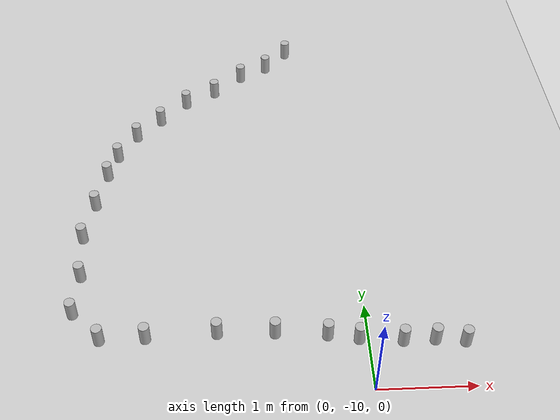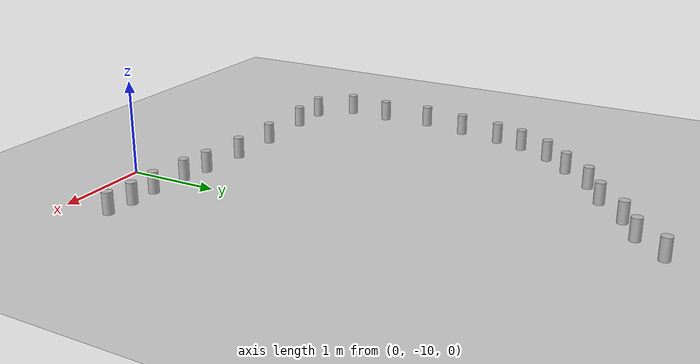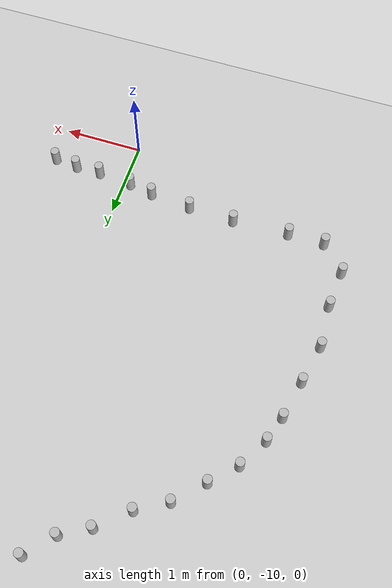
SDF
<sdf version="1.7">
 <world name="default">
  <model name="ground_plane">
   <static>1</static>
   <link name="link">
    <collision name="collision">
     <geometry><plane><normal>0 0 1</normal><size>100 100</size></plane></geometry>
     <surface>
      <contact><collide_bitmask>65535</collide_bitmask></contact>
      <friction><ode><mu>100</mu><mu2>50</mu2></ode></friction>
     </surface>
    </collision>
    <visual name="visual">
     <cast_shadows>0</cast_shadows>
     <geometry><plane><normal>0 0 1</normal><size>100 100</size></plane></geometry>
     <material>
      <script><uri>file://media/materials/scripts/gazebo.material</uri><name>Gazebo/Grey</name></script>
     </material>
    </visual>
   </link>
  </model>
  <model name="beer_clone_31">
   <link name="link">
    <pose>0 0 0.115 0 -0 0</pose>
    <inertial>
     <mass>0.39</mass>
     <inertia><ixx>0.00058</ixx><ixy>0</ixy><ixz>0</ixz><iyy>0.00058</iyy><iyz>0</iyz><izz>0.00019</izz></inertia>
    </inertial>
    <collision name="collision">
     <geometry><cylinder><radius>0.055</radius><length>0.23</length></cylinder></geometry>
    </collision>
    <visual name="visual">
     <geometry><cylinder><radius>0.055</radius><length>0.23</length></cylinder></geometry>
     <material>
      <script>
       <uri>model://beer/materials/scripts</uri>
       <uri>model://beer/materials/textures</uri>
       <name>Beer/Diffuse</name>
      </script>
     </material>
    </visual>
   </link>
   <pose>-0.602273 -4.65243 0 0 -0 0</pose>
  </model>
  <model name="beer_clone_32">
   <link name="link">
    <pose>0 0 0.115 0 -0 0</pose>
    <inertial>
     <mass>0.39</mass>
     <inertia><ixx>0.00058</ixx><ixy>0</ixy><ixz>0</ixz><iyy>0.00058</iyy><iyz>0</iyz><izz>0.00019</izz></inertia>
    </inertial>
    <collision name="collision">
     <geometry><cylinder><radius>0.055</radius><length>0.23</length></cylinder></geometry>
    </collision>
    <visual name="visual">
     <geometry><cylinder><radius>0.055</radius><length>0.23</length></cylinder></geometry>
     <material>
      <script>
       <uri>model://beer/materials/scripts</uri>
       <uri>model://beer/materials/textures</uri>
       <name>Beer/Diffuse</name>
      </script>
     </material>
    </visual>
   </link>
   <pose>-0.881178 -4.96485 0 0 -0 0</pose>
  </model>
  <model name="beer_clone_33">
   <link name="link">
    <pose>0 0 0.115 0 -0 0</pose>
    <inertial>
     <mass>0.39</mass>
     <inertia><ixx>0.00058</ixx><ixy>0</ixy><ixz>0</ixz><iyy>0.00058</iyy><iyz>0</iyz><izz>0.00019</izz></inertia>
    </inertial>
    <collision name="collision">
     <geometry><cylinder><radius>0.055</radius><length>0.23</length></cylinder></geometry>
    </collision>
    <visual name="visual">
     <geometry><cylinder><radius>0.055</radius><length>0.23</length></cylinder></geometry>
     <material>
      <script>
       <uri>model://beer/materials/scripts</uri>
       <uri>model://beer/materials/textures</uri>
       <name>Beer/Diffuse</name>
      </script>
     </material>
    </visual>
   </link>
   <pose>-1.21469 -5.15361 0 0 -0 0</pose>
  </model>
  <model name="beer_clone_34">
   <link name="link">
    <pose>0 0 0.115 0 -0 0</pose>
    <inertial>
     <mass>0.39</mass>
     <inertia><ixx>0.00058</ixx><ixy>0</ixy><ixz>0</ixz><iyy>0.00058</iyy><iyz>0</iyz><izz>0.00019</izz></inertia>
    </inertial>
    <collision name="collision">
     <geometry><cylinder><radius>0.055</radius><length>0.23</length></cylinder></geometry>
    </collision>
    <visual name="visual">
     <geometry><cylinder><radius>0.055</radius><length>0.23</length></cylinder></geometry>
     <material>
      <script>
       <uri>model://beer/materials/scripts</uri>
       <uri>model://beer/materials/textures</uri>
       <name>Beer/Diffuse</name>
      </script>
     </material>
    </visual>
   </link>
   <pose>-1.56116 -5.46531 0 0 -0 0</pose>
  </model>
  <model name="beer_clone_35">
   <link name="link">
    <pose>0 0 0.115 0 -0 0</pose>
    <inertial>
     <mass>0.39</mass>
     <inertia><ixx>0.00058</ixx><ixy>0</ixy><ixz>0</ixz><iyy>0.00058</iyy><iyz>0</iyz><izz>0.00019</izz></inertia>
    </inertial>
    <collision name="collision">
     <geometry><cylinder><radius>0.055</radius><length>0.23</length></cylinder></geometry>
    </collision>
    <visual name="visual">
     <geometry><cylinder><radius>0.055</radius><length>0.23</length></cylinder></geometry>
     <material>
      <script>
       <uri>model://beer/materials/scripts</uri>
       <uri>model://beer/materials/textures</uri>
       <name>Beer/Diffuse</name>
      </script>
     </material>
    </visual>
   </link>
   <pose>-1.92078 -5.67655 0 0 -0 0</pose>
  </model>
  <model name="beer_clone_36">
   <link name="link">
    <pose>0 0 0.115 0 -0 0</pose>
    <inertial>
     <mass>0.39</mass>
     <inertia><ixx>0.00058</ixx><ixy>0</ixy><ixz>0</ixz><iyy>0.00058</iyy><iyz>0</iyz><izz>0.00019</izz></inertia>
    </inertial>
    <collision name="collision">
     <geometry><cylinder><radius>0.055</radius><length>0.23</length></cylinder></geometry>
    </collision>
    <visual name="visual">
     <geometry><cylinder><radius>0.055</radius><length>0.23</length></cylinder></geometry>
     <material>
      <script>
       <uri>model://beer/materials/scripts</uri>
       <uri>model://beer/materials/textures</uri>
       <name>Beer/Diffuse</name>
      </script>
     </material>
    </visual>
   </link>
   <pose>-2.23229 -6.00202 0 0 -0 0</pose>
  </model>
  <model name="beer_clone_37">
   <link name="link">
    <pose>0 0 0.115 0 -0 0</pose>
    <inertial>
     <mass>0.39</mass>
     <inertia><ixx>0.00058</ixx><ixy>0</ixy><ixz>0</ixz><iyy>0.00058</iyy><iyz>0</iyz><izz>0.00019</izz></inertia>
    </inertial>
    <collision name="collision">
     <geometry><cylinder><radius>0.055</radius><length>0.23</length></cylinder></geometry>
    </collision>
    <visual name="visual">
     <geometry><cylinder><radius>0.055</radius><length>0.23</length></cylinder></geometry>
     <material>
      <script>
       <uri>model://beer/materials/scripts</uri>
       <uri>model://beer/materials/textures</uri>
       <name>Beer/Diffuse</name>
      </script>
     </material>
    </visual>
   </link>
   <pose>-2.51298 -6.2958 0 0 -0 0</pose>
  </model>
  <model name="beer_clone_38">
   <link name="link">
    <pose>0 0 0.115 0 -0 0</pose>
    <inertial>
     <mass>0.39</mass>
     <inertia><ixx>0.00058</ixx><ixy>0</ixy><ixz>0</ixz><iyy>0.00058</iyy><iyz>0</iyz><izz>0.00019</izz></inertia>
    </inertial>
    <collision name="collision">
     <geometry><cylinder><radius>0.055</radius><length>0.23</length></cylinder></geometry>
    </collision>
    <visual name="visual">
     <geometry><cylinder><radius>0.055</radius><length>0.23</length></cylinder></geometry>
     <material>
      <script>
       <uri>model://beer/materials/scripts</uri>
       <uri>model://beer/materials/textures</uri>
       <name>Beer/Diffuse</name>
      </script>
     </material>
    </visual>
   </link>
   <pose>-2.71569 -6.65942 0 0 -0 0</pose>
  </model>
  <model name="beer_clone_39">
   <link name="link">
    <pose>0 0 0.115 0 -0 0</pose>
    <inertial>
     <mass>0.39</mass>
     <inertia><ixx>0.00058</ixx><ixy>0</ixy><ixz>0</ixz><iyy>0.00058</iyy><iyz>0</iyz><izz>0.00019</izz></inertia>
    </inertial>
    <collision name="collision">
     <geometry><cylinder><radius>0.055</radius><length>0.23</length></cylinder></geometry>
    </collision>
    <visual name="visual">
     <geometry><cylinder><radius>0.055</radius><length>0.23</length></cylinder></geometry>
     <material>
      <script>
       <uri>model://beer/materials/scripts</uri>
       <uri>model://beer/materials/textures</uri>
       <name>Beer/Diffuse</name>
      </script>
     </material>
    </visual>
   </link>
   <pose>-2.81237 -6.98223 0 0 -0 0</pose>
  </model>
  <model name="beer_clone_40">
   <link name="link">
    <pose>0 0 0.115 0 -0 0</pose>
    <inertial>
     <mass>0.39</mass>
     <inertia><ixx>0.00058</ixx><ixy>0</ixy><ixz>0</ixz><iyy>0.00058</iyy><iyz>0</iyz><izz>0.00019</izz></inertia>
    </inertial>
    <collision name="collision">
     <geometry><cylinder><radius>0.055</radius><length>0.23</length></cylinder></geometry>
    </collision>
    <visual name="visual">
     <geometry><cylinder><radius>0.055</radius><length>0.23</length></cylinder></geometry>
     <material>
      <script>
       <uri>model://beer/materials/scripts</uri>
       <uri>model://beer/materials/textures</uri>
       <name>Beer/Diffuse</name>
      </script>
     </material>
    </visual>
   </link>
   <pose>-2.90852 -7.46349 0 0 -0 0</pose>
  </model>
  <model name="beer_clone_41">
   <link name="link">
    <pose>0 0 0.115 0 -0 0</pose>
    <inertial>
     <mass>0.39</mass>
     <inertia><ixx>0.00058</ixx><ixy>0</ixy><ixz>0</ixz><iyy>0.00058</iyy><iyz>0</iyz><izz>0.00019</izz></inertia>
    </inertial>
    <collision name="collision">
     <geometry><cylinder><radius>0.055</radius><length>0.23</length></cylinder></geometry>
    </collision>
    <visual name="visual">
     <geometry><cylinder><radius>0.055</radius><length>0.23</length></cylinder></geometry>
     <material>
      <script>
       <uri>model://beer/materials/scripts</uri>
       <uri>model://beer/materials/textures</uri>
       <name>Beer/Diffuse</name>
      </script>
     </material>
    </visual>
   </link>
   <pose>-3.00309 -7.96324 0 0 -0 0</pose>
  </model>
  <model name="beer_clone_42">
   <link name="link">
    <pose>0 0 0.115 0 -0 0</pose>
    <inertial>
     <mass>0.39</mass>
     <inertia><ixx>0.00058</ixx><ixy>0</ixy><ixz>0</ixz><iyy>0.00058</iyy><iyz>0</iyz><izz>0.00019</izz></inertia>
    </inertial>
    <collision name="collision">
     <geometry><cylinder><radius>0.055</radius><length>0.23</length></cylinder></geometry>
    </collision>
    <visual name="visual">
     <geometry><cylinder><radius>0.055</radius><length>0.23</length></cylinder></geometry>
     <material>
      <script>
       <uri>model://beer/materials/scripts</uri>
       <uri>model://beer/materials/textures</uri>
       <name>Beer/Diffuse</name>
      </script>
     </material>
    </visual>
   </link>
   <pose>-2.96738 -8.51139 0 0 -0 0</pose>
  </model>
  <model name="beer_clone_43">
   <link name="link">
    <pose>0 0 0.115 0 -0 0</pose>
    <inertial>
     <mass>0.39</mass>
     <inertia><ixx>0.00058</ixx><ixy>0</ixy><ixz>0</ixz><iyy>0.00058</iyy><iyz>0</iyz><izz>0.00019</izz></inertia>
    </inertial>
    <collision name="collision">
     <geometry><cylinder><radius>0.055</radius><length>0.23</length></cylinder></geometry>
    </collision>
    <visual name="visual">
     <geometry><cylinder><radius>0.055</radius><length>0.23</length></cylinder></geometry>
     <material>
      <script>
       <uri>model://beer/materials/scripts</uri>
       <uri>model://beer/materials/textures</uri>
       <name>Beer/Diffuse</name>
      </script>
     </material>
    </visual>
   </link>
   <pose>-3 -9 0 0 -0 0</pose>
  </model>
  <model name="beer_clone_44">
   <link name="link">
    <pose>0 0 0.115 0 -0 0</pose>
    <inertial>
     <mass>0.39</mass>
     <inertia><ixx>0.00058</ixx><ixy>0</ixy><ixz>0</ixz><iyy>0.00058</iyy><iyz>0</iyz><izz>0.00019</izz></inertia>
    </inertial>
    <collision name="collision">
     <geometry><cylinder><radius>0.055</radius><length>0.23</length></cylinder></geometry>
    </collision>
    <visual name="visual">
     <geometry><cylinder><radius>0.055</radius><length>0.23</length></cylinder></geometry>
     <material>
      <script>
       <uri>model://beer/materials/scripts</uri>
       <uri>model://beer/materials/textures</uri>
       <name>Beer/Diffuse</name>
      </script>
     </material>
    </visual>
   </link>
   <pose>-2.69641 -9.33648 0 0 -0 0</pose>
  </model>
  <model name="beer_clone_45">
   <link name="link">
    <pose>0 0 0.115 0 -0 0</pose>
    <inertial>
     <mass>0.39</mass>
     <inertia><ixx>0.00058</ixx><ixy>0</ixy><ixz>0</ixz><iyy>0.00058</iyy><iyz>0</iyz><izz>0.00019</izz></inertia>
    </inertial>
    <collision name="collision">
     <geometry><cylinder><radius>0.055</radius><length>0.23</length></cylinder></geometry>
    </collision>
    <visual name="visual">
     <geometry><cylinder><radius>0.055</radius><length>0.23</length></cylinder></geometry>
     <material>
      <script>
       <uri>model://beer/materials/scripts</uri>
       <uri>model://beer/materials/textures</uri>
       <name>Beer/Diffuse</name>
      </script>
     </material>
    </visual>
   </link>
   <pose>-2.23384 -9.33336 0 0 -0 0</pose>
  </model>
  <model name="beer_clone_46">
   <link name="link">
    <pose>0 0 0.115 0 -0 0</pose>
    <inertial>
     <mass>0.39</mass>
     <inertia><ixx>0.00058</ixx><ixy>0</ixy><ixz>0</ixz><iyy>0.00058</iyy><iyz>0</iyz><izz>0.00019</izz></inertia>
    </inertial>
    <collision name="collision">
     <geometry><cylinder><radius>0.055</radius><length>0.23</length></cylinder></geometry>
    </collision>
    <visual name="visual">
     <geometry><cylinder><radius>0.055</radius><length>0.23</length></cylinder></geometry>
     <material>
      <script>
       <uri>model://beer/materials/scripts</uri>
       <uri>model://beer/materials/textures</uri>
       <name>Beer/Diffuse</name>
      </script>
     </material>
    </visual>
   </link>
   <pose>-1.51755 -9.30422 0 0 -0 0</pose>
  </model>
  <model name="beer_clone_47">
   <link name="link">
    <pose>0 0 0.115 0 -0 0</pose>
    <inertial>
     <mass>0.39</mass>
     <inertia><ixx>0.00058</ixx><ixy>0</ixy><ixz>0</ixz><iyy>0.00058</iyy><iyz>0</iyz><izz>0.00019</izz></inertia>
    </inertial>
    <collision name="collision">
     <geometry><cylinder><radius>0.055</radius><length>0.23</length></cylinder></geometry>
    </collision>
    <visual name="visual">
     <geometry><cylinder><radius>0.055</radius><length>0.23</length></cylinder></geometry>
     <material>
      <script>
       <uri>model://beer/materials/scripts</uri>
       <uri>model://beer/materials/textures</uri>
       <name>Beer/Diffuse</name>
      </script>
     </material>
    </visual>
   </link>
   <pose>-0.933255 -9.32148 0 0 -0 0</pose>
  </model>
  <model name="beer_clone_48">
   <link name="link">
    <pose>0 0 0.115 0 -0 0</pose>
    <inertial>
     <mass>0.39</mass>
     <inertia><ixx>0.00058</ixx><ixy>0</ixy><ixz>0</ixz><iyy>0.00058</iyy><iyz>0</iyz><izz>0.00019</izz></inertia>
    </inertial>
    <collision name="collision">
     <geometry><cylinder><radius>0.055</radius><length>0.23</length></cylinder></geometry>
    </collision>
    <visual name="visual">
     <geometry><cylinder><radius>0.055</radius><length>0.23</length></cylinder></geometry>
     <material>
      <script>
       <uri>model://beer/materials/scripts</uri>
       <uri>model://beer/materials/textures</uri>
       <name>Beer/Diffuse</name>
      </script>
     </material>
    </visual>
   </link>
   <pose>-0.406918 -9.3675 0 0 -0 0</pose>
  </model>
  <model name="beer_clone_49">
   <link name="link">
    <pose>0 0 0.115 0 -0 0</pose>
    <inertial>
     <mass>0.39</mass>
     <inertia><ixx>0.00058</ixx><ixy>0</ixy><ixz>0</ixz><iyy>0.00058</iyy><iyz>0</iyz><izz>0.00019</izz></inertia>
    </inertial>
    <collision name="collision">
     <geometry><cylinder><radius>0.055</radius><length>0.23</length></cylinder></geometry>
    </collision>
    <visual name="visual">
     <geometry><cylinder><radius>0.055</radius><length>0.23</length></cylinder></geometry>
     <material>
      <script>
       <uri>model://beer/materials/scripts</uri>
       <uri>model://beer/materials/textures</uri>
       <name>Beer/Diffuse</name>
      </script>
     </material>
    </visual>
   </link>
   <pose>-0.095067 -9.42507 0 0 -0 0</pose>
  </model>
  <model name="beer_clone_50">
   <link name="link">
    <pose>0 0 0.115 0 -0 0</pose>
    <inertial>
     <mass>0.39</mass>
     <inertia><ixx>0.00058</ixx><ixy>0</ixy><ixz>0</ixz><iyy>0.00058</iyy><iyz>0</iyz><izz>0.00019</izz></inertia>
    </inertial>
    <collision name="collision">
     <geometry><cylinder><radius>0.055</radius><length>0.23</length></cylinder></geometry>
    </collision>
    <visual name="visual">
     <geometry><cylinder><radius>0.055</radius><length>0.23</length></cylinder></geometry>
     <material>
      <script>
       <uri>model://beer/materials/scripts</uri>
       <uri>model://beer/materials/textures</uri>
       <name>Beer/Diffuse</name>
      </script>
     </material>
    </visual>
   </link>
   <pose>0.342245 -9.46557 0 0 -0 0</pose>
  </model>
  <model name="beer_clone_51">
   <link name="link">
    <pose>0 0 0.115 0 -0 0</pose>
    <inertial>
     <mass>0.39</mass>
     <inertia><ixx>0.00058</ixx><ixy>0</ixy><ixz>0</ixz><iyy>0.00058</iyy><iyz>0</iyz><izz>0.00019</izz></inertia>
    </inertial>
    <collision name="collision">
     <geometry><cylinder><radius>0.055</radius><length>0.23</length></cylinder></geometry>
    </collision>
    <visual name="visual">
     <geometry><cylinder><radius>0.055</radius><length>0.23</length></cylinder></geometry>
     <material>
      <script>
       <uri>model://beer/materials/scripts</uri>
       <uri>model://beer/materials/textures</uri>
       <name>Beer/Diffuse</name>
      </script>
     </material>
    </visual>
   </link>
   <pose>0.664366 -9.46299 0 0 -0 0</pose>
  </model>
  <model name="beer_clone_52">
   <link name="link">
    <pose>0 0 0.115 0 -0 0</pose>
    <inertial>
     <mass>0.39</mass>
     <inertia><ixx>0.00058</ixx><ixy>0</ixy><ixz>0</ixz><iyy>0.00058</iyy><iyz>0</iyz><izz>0.00019</izz></inertia>
    </inertial>
    <collision name="collision">
     <geometry><cylinder><radius>0.055</radius><length>0.23</length></cylinder></geometry>
    </collision>
    <visual name="visual">
     <geometry><cylinder><radius>0.055</radius><length>0.23</length></cylinder></geometry>
     <material>
      <script>
       <uri>model://beer/materials/scripts</uri>
       <uri>model://beer/materials/textures</uri>
       <name>Beer/Diffuse</name>
      </script>
     </material>
    </visual>
   </link>
   <pose>0.963714 -9.49859 0 0 -0 0</pose>
  </model>
 </world>
</sdf>
